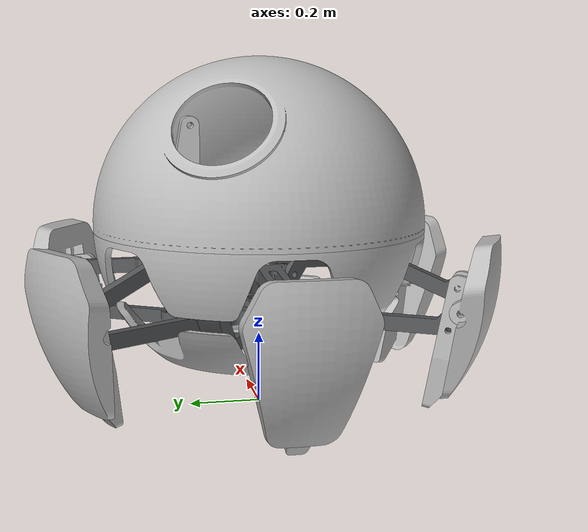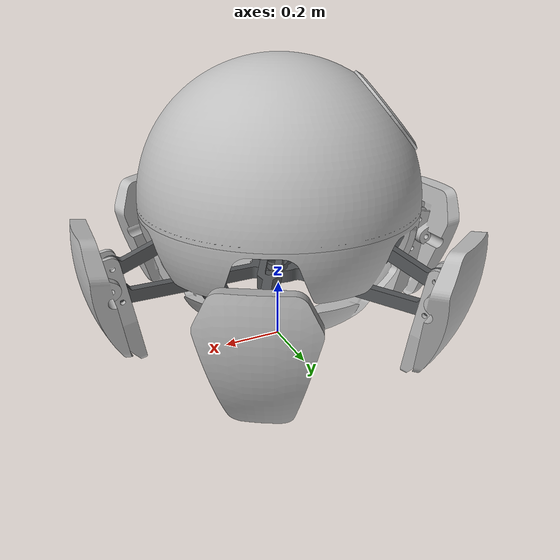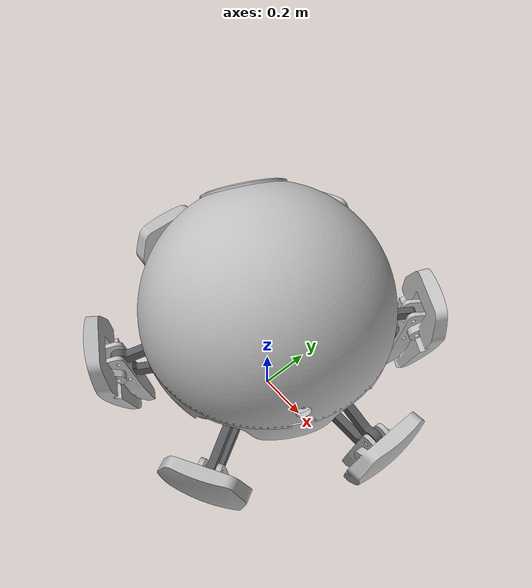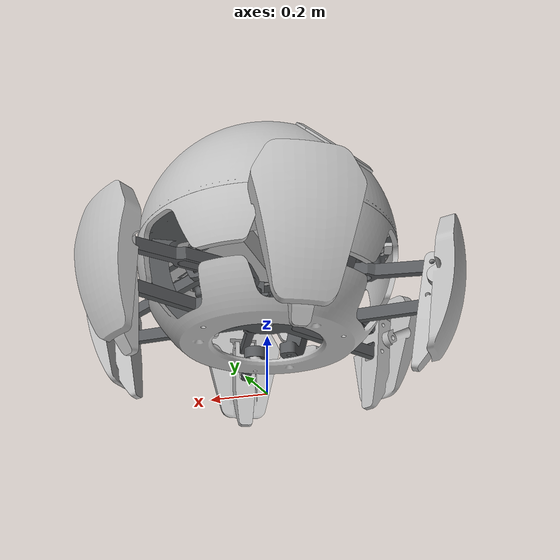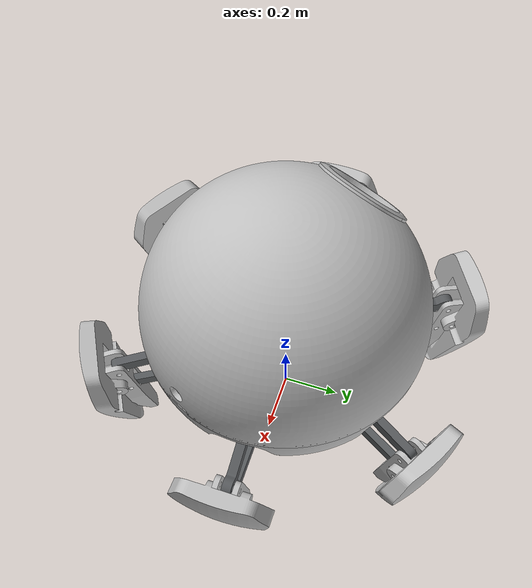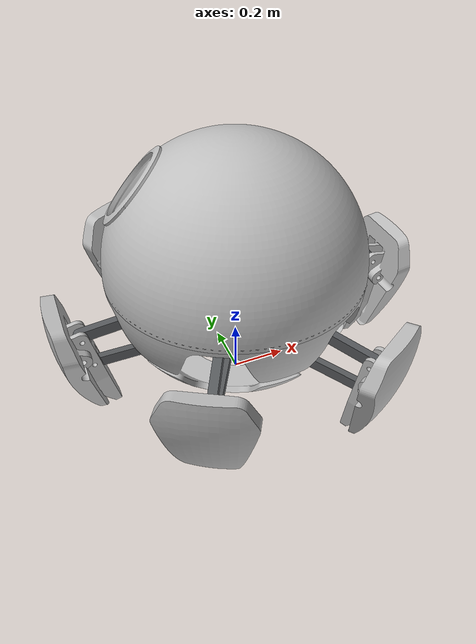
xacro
<?xml version="1.0" ?>
<robot name="xpider" xmlns:xacro="http://ros.org/wiki/xacro">
<xacro:include filename="$(find xpider_resources)/urdf/common_materials.xacro"/>
<xacro:include filename="$(find xpider_resources)/urdf/common_constants.xacro"/>
<xacro:include filename="$(find xpider_descriptions)/models/step_bridge.xacro"/>
<xacro:include filename="$(find xpider_descriptions)/models/step_up.xacro"/>
<xacro:include filename="$(find xpider_descriptions)/models/step_connect.xacro"/>
<xacro:include filename="$(find xpider_descriptions)/models/step_b.xacro"/>
<xacro:include filename="$(find xpider_descriptions)/models/step_c.xacro"/>
<xacro:include filename="$(find xpider_descriptions)/models/xpider.gazebo" />

  <link name="world"/>

  <!-- Big fixed components-->
  <xacro:include filename="$(find xpider_descriptions)/models/set_base.xacro" />

  <!--  First set of Legs -->
  <xacro:include filename="$(find xpider_descriptions)/models/set_legs_1.xacro" />

  <!-- Second set of legs -->
  <xacro:include filename="$(find xpider_descriptions)/models/set_legs_2.xacro" />

  <!-- Leg shields -->
  <xacro:include filename="$(find xpider_descriptions)/models/set_legs_shield.xacro" />

</robot>

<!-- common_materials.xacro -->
<robot xmlns:xacro="http://ros.org/wiki/xacro">
  <xacro:include filename="$(find xpider_resources)/urdf/common_colours.xacro"/>

  <xacro:macro name="material_xpider_yellow">
    <material name="">
      <color rgba="${color_xpider_yellow}"/>
    </material>
  </xacro:macro>

  <xacro:macro name="material_xpider_white">
    <material name="">
      <color rgba="${color_xpider_white}"/>
    </material>
  </xacro:macro>

  <xacro:macro name="material_xpider_black">
    <material name="">
      <color rgba="${color_xpider_black}"/>
    </material>
  </xacro:macro>

  <xacro:macro name="material_xpider_grey">
    <material name="">
      <color rgba="${color_xpider_grey}"/>
    </material>
  </xacro:macro>

  <xacro:macro name="material_xpider_greyish">
    <material name="">
      <color rgba="${color_xpider_greyish}"/>
    </material>
  </xacro:macro>

</robot>

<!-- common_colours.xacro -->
<robot xmlns:xacro="http://ros.org/wiki/xacro">

  <!-- RAL 1021 -->
  <xacro:property name="color_xpider_yellow"   value="0.96 0.76 0.13 1.0" />
  <!-- RAL 9002 -->
  <xacro:property name="color_xpider_white"    value="0.86 0.85 0.81 1.0" />
  <!-- RAL 7024 -->
  <xacro:property name="color_xpider_grey"     value="0.34 0.35 0.36 1.0" />

  <!-- approximations -->
  <xacro:property name="color_xpider_black"    value="0.15 0.15 0.15 1.0" />
  <xacro:property name="color_xpider_greyish"  value="0.75 0.75 0.75 1.0" />

</robot>

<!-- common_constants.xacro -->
<robot xmlns:xacro="http://ros.org/wiki/xacro">

  <!-- Pi, the ratio of a circle's circumference to its diameter -->
  <xacro:property name="m_pi" value="3.1415926535" />
  <!-- Pi divided by two -->
  <xacro:property name="m_pi_2" value="1.570796327" />
  <!-- 3Pi divided by two -->
  <xacro:property name="m_3_pi_2" value="2.35619449" />
  <!-- 3Pi divided by two -->
  <xacro:property name="m_2_pi_3" value="2.09439510239" />
  <!-- Pi divided by four -->
  <xacro:property name="m_pi_4" value="0.785398163" />
  <!-- Pi divided by three -->
  <xacro:property name="m_pi_3" value="1.0471975512" />
  <!-- Pi divided by six -->
  <xacro:property name="m_pi_6" value="0.52359877559" />
  <xacro:property name="m_5_pi_3" value="${m_2_pi_3}" />

  <!-- pi -->
  <xacro:property name="cos_m_pi" value="-1" />
  <xacro:property name="sin_m_pi" value="0" />

  <!-- pi/2 -->
  <xacro:property name="cos_m_pi_2" value="0" />
  <xacro:property name="sin_m_pi_2" value="1" />

  <!-- pi/6 -->
  <xacro:property name="cos_m_pi_6" value="0.86602540378" />
  <xacro:property name="sin_m_pi_6" value="0.5" />
  <xacro:property name="cos_m_5_pi_6" value="${-cos_m_pi_6}" />
  <xacro:property name="sin_m_5_pi_6" value="${sin_m_pi_6}" />
  <xacro:property name="cos_m_11_pi_6" value="0.86602540378" />
  <xacro:property name="sin_m_11_pi_6" value="-0.5" />

  <!-- pi/3 -->
  <xacro:property name="cos_m_pi_3" value="0.5" />
  <xacro:property name="sin_m_pi_3" value="0.86602540378" />
  <xacro:property name="cos_m_2_pi_3" value="${-cos_m_pi_3}" />
  <xacro:property name="sin_m_2_pi_3" value="${sin_m_pi_3}" />
  <xacro:property name="cos_m_4_pi_3" value="${-cos_m_pi_3}" />
  <xacro:property name="sin_m_4_pi_3" value="${-sin_m_pi_3}" />
  <xacro:property name="cos_m_5_pi_3" value="${cos_m_pi_3}" />
  <xacro:property name="sin_m_5_pi_3" value="${-sin_m_pi_3}" />

  <xacro:property name="ratio_stl" value="0.01006046568"/>

  <xacro:property name="height_base" value="${52*ratio_stl}"/>
  <xacro:property name="height_step" value="${3.97595909298*ratio_stl}"/>
  <xacro:property name="height_leg" value="${height_step/2 + 0*0.69579284127*ratio_stl}"/>
  <xacro:property name="base_link_to_step_height" value="${height_base-27.8317136509*ratio_stl}"/>
  <xacro:property name="base_link_to_step_up" value="${height_base - 4.96994886622*ratio_stl}"/>
  <xacro:property name="diameter_step" value="${47*ratio_stl}" />
  <xacro:property name="diameter_step_to_leg_123" value="${54*ratio_stl}" />
  <xacro:property name="diameter_step_up_to_leg" value="${31.5*ratio_stl}" />
  <xacro:property name="diameter_step_up" value="${26*ratio_stl}" />
  <xacro:property name="diameter_step_connect" value="${5.5*ratio_stl}" />
  <xacro:property name="height_step_connect_to_step_b" value="${3.99583888844*ratio_stl}" />
  <xacro:property name="diameter_step_connect_to_step_b" value="${4.17475704763*ratio_stl}" />
  <xacro:property name="height_base_link_to_step_c" value="${base_link_to_step_height-1.6*ratio_stl}"/>
  <xacro:property name="step_to_step_connect_height" value="${6.20249618505*ratio_stl}"/>
  <xacro:property name="diameter_step_c" value="${26*ratio_stl}" />
  <xacro:property name="x_leg_to_leg_shield_set_1" value="${2.48497443311*ratio_stl}" />
  <xacro:property name="x_leg_to_leg_shield_set_2" value="${1.49098465987*ratio_stl}" />
  <xacro:property name="z_leg_to_leg_shield" value="${5.96393863947*ratio_stl}" />

</robot>

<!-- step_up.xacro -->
<robot name="xpider_step_up" xmlns:xacro="http://ros.org/wiki/xacro">
<xacro:include filename="$(find xpider_resources)/urdf/common_materials.xacro"/>
<xacro:include filename="$(find xpider_resources)/urdf/common_constants.xacro"/>

    <xacro:macro name="step_up" params="num">
    <link name="step_up_${num}">
    <visual>
      <origin xyz="0 0 0" rpy="0 0 0"/>
      <geometry>
        <mesh filename="package://xpider_descriptions/meshes/step_up.stl" scale="${ratio_stl} ${ratio_stl} ${ratio_stl}"/>
      </geometry>
      <xacro:material_xpider_grey />
      </visual>
      <collision>
        <origin xyz="0 0 0" rpy="0 0 0"/>
        <geometry>
          <mesh filename="package://xpider_descriptions/meshes/step_up.stl" scale="${ratio_stl} ${ratio_stl} ${ratio_stl}"/>
        </geometry>
      </collision>
    </link>
    </xacro:macro>

</robot>

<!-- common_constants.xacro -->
<robot xmlns:xacro="http://ros.org/wiki/xacro">

  <!-- Pi, the ratio of a circle's circumference to its diameter -->
  <xacro:property name="m_pi" value="3.1415926535" />
  <!-- Pi divided by two -->
  <xacro:property name="m_pi_2" value="1.570796327" />
  <!-- 3Pi divided by two -->
  <xacro:property name="m_3_pi_2" value="2.35619449" />
  <!-- 3Pi divided by two -->
  <xacro:property name="m_2_pi_3" value="2.09439510239" />
  <!-- Pi divided by four -->
  <xacro:property name="m_pi_4" value="0.785398163" />
  <!-- Pi divided by three -->
  <xacro:property name="m_pi_3" value="1.0471975512" />
  <!-- Pi divided by six -->
  <xacro:property name="m_pi_6" value="0.52359877559" />
  <xacro:property name="m_5_pi_3" value="${m_2_pi_3}" />

  <!-- pi -->
  <xacro:property name="cos_m_pi" value="-1" />
  <xacro:property name="sin_m_pi" value="0" />

  <!-- pi/2 -->
  <xacro:property name="cos_m_pi_2" value="0" />
  <xacro:property name="sin_m_pi_2" value="1" />

  <!-- pi/6 -->
  <xacro:property name="cos_m_pi_6" value="0.86602540378" />
  <xacro:property name="sin_m_pi_6" value="0.5" />
  <xacro:property name="cos_m_5_pi_6" value="${-cos_m_pi_6}" />
  <xacro:property name="sin_m_5_pi_6" value="${sin_m_pi_6}" />
  <xacro:property name="cos_m_11_pi_6" value="0.86602540378" />
  <xacro:property name="sin_m_11_pi_6" value="-0.5" />

  <!-- pi/3 -->
  <xacro:property name="cos_m_pi_3" value="0.5" />
  <xacro:property name="sin_m_pi_3" value="0.86602540378" />
  <xacro:property name="cos_m_2_pi_3" value="${-cos_m_pi_3}" />
  <xacro:property name="sin_m_2_pi_3" value="${sin_m_pi_3}" />
  <xacro:property name="cos_m_4_pi_3" value="${-cos_m_pi_3}" />
  <xacro:property name="sin_m_4_pi_3" value="${-sin_m_pi_3}" />
  <xacro:property name="cos_m_5_pi_3" value="${cos_m_pi_3}" />
  <xacro:property name="sin_m_5_pi_3" value="${-sin_m_pi_3}" />

  <xacro:property name="ratio_stl" value="0.01006046568"/>

  <xacro:property name="height_base" value="${52*ratio_stl}"/>
  <xacro:property name="height_step" value="${3.97595909298*ratio_stl}"/>
  <xacro:property name="height_leg" value="${height_step/2 + 0*0.69579284127*ratio_stl}"/>
  <xacro:property name="base_link_to_step_height" value="${height_base-27.8317136509*ratio_stl}"/>
  <xacro:property name="base_link_to_step_up" value="${height_base - 4.96994886622*ratio_stl}"/>
  <xacro:property name="diameter_step" value="${47*ratio_stl}" />
  <xacro:property name="diameter_step_to_leg_123" value="${54*ratio_stl}" />
  <xacro:property name="diameter_step_up_to_leg" value="${31.5*ratio_stl}" />
  <xacro:property name="diameter_step_up" value="${26*ratio_stl}" />
  <xacro:property name="diameter_step_connect" value="${5.5*ratio_stl}" />
  <xacro:property name="height_step_connect_to_step_b" value="${3.99583888844*ratio_stl}" />
  <xacro:property name="diameter_step_connect_to_step_b" value="${4.17475704763*ratio_stl}" />
  <xacro:property name="height_base_link_to_step_c" value="${base_link_to_step_height-1.6*ratio_stl}"/>
  <xacro:property name="step_to_step_connect_height" value="${6.20249618505*ratio_stl}"/>
  <xacro:property name="diameter_step_c" value="${26*ratio_stl}" />

</robot>

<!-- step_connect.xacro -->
<robot name="xpider_step_connect" xmlns:xacro="http://ros.org/wiki/xacro">
<xacro:include filename="$(find xpider_resources)/urdf/common_materials.xacro"/>
<xacro:include filename="$(find xpider_resources)/urdf/common_constants.xacro"/>

    <xacro:macro name="step_connect" params="num">
    <link name="step_connect_${num}">
    <visual>
      <origin xyz="0 0 0" rpy="0 0 0"/>
      <geometry>
        <mesh filename="package://xpider_descriptions/meshes/step_connect.stl" scale="${ratio_stl} ${ratio_stl} ${ratio_stl}"/>
      </geometry>
      <xacro:material_xpider_grey />
      </visual>
      <collision>
        <origin xyz="0 0 0" rpy="0 0 0"/>
        <geometry>
          <mesh filename="package://xpider_descriptions/meshes/step_connect.stl" scale="${ratio_stl} ${ratio_stl} ${ratio_stl}"/>
        </geometry>
      </collision>
    </link>
    </xacro:macro>
</robot>

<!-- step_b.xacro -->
<robot name="xpider_step_b" xmlns:xacro="http://ros.org/wiki/xacro">
<xacro:include filename="$(find xpider_resources)/urdf/common_materials.xacro"/>
<xacro:include filename="$(find xpider_resources)/urdf/common_constants.xacro"/>

    <xacro:macro name="step_b" params="num">
    <link name="step_b_${num}">
    <visual>
      <origin xyz="0 0 0" rpy="${m_pi_3/11 - m_pi_2} 0 ${m_pi}"/>
      <geometry>
        <mesh filename="package://xpider_descriptions/meshes/step_b.stl" scale="${ratio_stl} ${ratio_stl} ${ratio_stl}"/>
      </geometry>
      <xacro:material_xpider_grey />
      </visual>
      <collision>
        <origin xyz="0 0 0" rpy="${m_pi_3/11 - m_pi_2} 0 ${m_pi}"/>
        <geometry>
          <mesh filename="package://xpider_descriptions/meshes/step_b.stl" scale="${ratio_stl} ${ratio_stl} ${ratio_stl}"/>
        </geometry>
      </collision>
    </link>
    </xacro:macro>
</robot>

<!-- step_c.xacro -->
<robot name="xpider_step_c" xmlns:xacro="http://ros.org/wiki/xacro">
<xacro:include filename="$(find xpider_resources)/urdf/common_materials.xacro"/>
<xacro:include filename="$(find xpider_resources)/urdf/common_constants.xacro"/>

    <xacro:macro name="step_c" params="num">
    <link name="step_c_${num}">
    <visual>
      <origin xyz="0 0 0" rpy="-${m_pi_2} 0 ${m_pi_3 + m_pi_6}"/>
      <geometry>
        <mesh filename="package://xpider_descriptions/meshes/step_c.stl" scale="${ratio_stl} ${ratio_stl} ${ratio_stl}"/>
      </geometry>
      <xacro:material_xpider_grey />
      </visual>
      <collision>
        <origin xyz="0 0 0" rpy="-${m_pi_2} 0 ${m_pi_3 + m_pi_6}"/>
        <geometry>
          <mesh filename="package://xpider_descriptions/meshes/step_c.stl" scale="${ratio_stl} ${ratio_stl} ${ratio_stl}"/>
        </geometry>
      </collision>
    </link>
    </xacro:macro>
</robot>

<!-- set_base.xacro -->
<robot name="xpider_set_base" xmlns:xacro="http://ros.org/wiki/xacro">

  <joint name="fixed" type="fixed">
    <parent link="world"/>
    <child link="base_link"/>
  </joint>

  <xacro:include filename="$(find xpider_descriptions)/models/base_link.xacro"/>

  <joint name="base_link_to_shield_top" type="continuous">
		<parent link="base_link" />
		<child link="shield_top" />
    <axis xyz="0 0 1"/>
		<origin xyz="0 0 ${height_base}" rpy="0 0 ${m_pi_3}" /> <!-- TOCHECK-->
	</joint>

  <xacro:include filename="$(find xpider_descriptions)/models/shield_top.xacro"/>

  <joint name="base_joint2" type="fixed">
		<parent link="base_link" />
		<child link="shield_bottom" />
		<origin xyz="0 0 ${height_base}" rpy="0 0 ${m_pi_3 + m_pi_6}" />
	</joint>

  <xacro:include filename="$(find xpider_descriptions)/models/shield_bottom.xacro"/>

  <joint name="base_step" type="prismatic">
		<parent link="base_link" />
		<child link="step" />
		<origin xyz="0 0 ${base_link_to_step_height + height_step/2}" rpy="0 0 ${m_pi_2 + m_pi_6}" />
    <limit effort="1000.0" lower="0" upper="0.03" velocity="0.5"/>
    <axis xyz="0 0 1"/>
	</joint>

  <xacro:include filename="$(find xpider_descriptions)/models/step.xacro"/>

  <joint name="base_step_base" type="fixed">
		<parent link="base_link" />
		<child link="step_base" />
		<origin xyz="0 0 ${height_base}" rpy="0 0 ${m_pi_3 + m_pi_6}" />
	</joint>

  <xacro:include filename="$(find xpider_descriptions)/models/step_base.xacro"/>

</robot>

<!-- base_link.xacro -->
<robot name="xpider_base_link" xmlns:xacro="http://ros.org/wiki/xacro">
<xacro:include filename="$(find xpider_resources)/urdf/common_materials.xacro"/>
<xacro:include filename="$(find xpider_resources)/urdf/common_constants.xacro"/>

    <link name="base_link">
    <visual>
      <origin xyz="0 0 ${height_base}" rpy="0 0 0"/>
      <geometry>
        <mesh filename="package://xpider_descriptions/meshes/base_link.stl" scale="${ratio_stl} ${ratio_stl} ${ratio_stl}"/>
      </geometry>
      <xacro:material_xpider_greyish />
      </visual>
      <collision>
        <origin xyz="0 0 ${height_base}" rpy="0 0 0"/>
        <geometry>
          <mesh filename="package://xpider_descriptions/meshes/base_link.stl" scale="${ratio_stl} ${ratio_stl} ${ratio_stl}"/>
        </geometry>
      </collision>
      <inertial>
      <origin xyz="0 0 ${height_base}" rpy="0 0 0"/>
      <mass value="1"/>
      <inertia
        ixx="1.0" ixy="0.0" ixz="0.0"
        iyy="1.0" iyz="0.0"
        izz="1.0"/>
    </inertial>
    </link>
</robot>

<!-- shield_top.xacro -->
<robot name="xpider_shield_top" xmlns:xacro="http://ros.org/wiki/xacro">
<xacro:include filename="$(find xpider_resources)/urdf/common_materials.xacro"/>
<xacro:include filename="$(find xpider_resources)/urdf/common_constants.xacro"/>

    <link name="shield_top">
    <visual>
      <origin xyz="0 0 0" rpy="${m_pi_2} 0 0.07"/>
      <geometry>
        <mesh filename="package://xpider_descriptions/meshes/shield_top.stl" scale="${ratio_stl} ${ratio_stl} ${ratio_stl}"/>
      </geometry>
      <xacro:material_xpider_greyish />
      </visual>
      <collision>
        <origin xyz="0 0 0" rpy="${m_pi_2} 0 0.07"/>
        <geometry>
          <mesh filename="package://xpider_descriptions/meshes/shield_top.stl" scale="${ratio_stl} ${ratio_stl} ${ratio_stl}"/>
        </geometry>
      </collision>
    </link>
</robot>

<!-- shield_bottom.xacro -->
<robot name="xpider_shield_bottom" xmlns:xacro="http://ros.org/wiki/xacro">
<xacro:include filename="$(find xpider_resources)/urdf/common_materials.xacro"/>
<xacro:include filename="$(find xpider_resources)/urdf/common_constants.xacro"/>

    <link name="shield_bottom">
    <visual>
      <origin xyz="0 0 0" rpy="0 -${m_pi_2} 0"/>
      <geometry>
        <mesh filename="package://xpider_descriptions/meshes/shield_bottom.stl" scale="${ratio_stl} ${ratio_stl} ${ratio_stl}"/>
      </geometry>
      <xacro:material_xpider_greyish />
      </visual>
      <collision>
        <origin xyz="0 0 0" rpy="0 -${m_pi_2} 0"/>
        <geometry>
          <mesh filename="package://xpider_descriptions/meshes/shield_bottom.stl" scale="${ratio_stl} ${ratio_stl} ${ratio_stl}"/>
        </geometry>
      </collision>
    </link>
</robot>

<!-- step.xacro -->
<robot name="xpider_step" xmlns:xacro="http://ros.org/wiki/xacro">
<xacro:include filename="$(find xpider_resources)/urdf/common_materials.xacro"/>
<xacro:include filename="$(find xpider_resources)/urdf/common_constants.xacro"/>

    <link name="step">
    <visual>
      <origin xyz="0 0 -${height_step/2}" rpy="${m_pi_2} 0 ${m_pi_3}"/>
      <geometry>
        <mesh filename="package://xpider_descriptions/meshes/step.stl" scale="${ratio_stl} ${ratio_stl} ${ratio_stl}"/>
      </geometry>
      <xacro:material_xpider_grey />
      </visual>
      <collision>
        <origin xyz="0 0 -${height_step/2}" rpy="${m_pi_2} 0 ${m_pi_3}"/>
        <geometry>
          <mesh filename="package://xpider_descriptions/meshes/step.stl" scale="${ratio_stl} ${ratio_stl} ${ratio_stl}"/>
        </geometry>
      </collision>
    </link>
</robot>

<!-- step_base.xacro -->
<robot name="xpider_step_base" xmlns:xacro="http://ros.org/wiki/xacro">
<xacro:include filename="$(find xpider_resources)/urdf/common_materials.xacro"/>
<xacro:include filename="$(find xpider_resources)/urdf/common_constants.xacro"/>

    <link name="step_base">
    <visual>
      <origin xyz="0 0 0" rpy="${m_pi_2} 0 ${m_pi_3}"/>
      <geometry>
        <mesh filename="package://xpider_descriptions/meshes/step_base.stl" scale="${ratio_stl} ${ratio_stl} ${ratio_stl}"/>
      </geometry>
      <xacro:material_xpider_grey />
      </visual>
      <collision>
        <origin xyz="0 0 0" rpy="${m_pi_2} 0 ${m_pi_3}"/>
        <geometry>
          <mesh filename="package://xpider_descriptions/meshes/step_base.stl" scale="${ratio_stl} ${ratio_stl} ${ratio_stl}"/>
        </geometry>
      </collision>
    </link>
</robot>

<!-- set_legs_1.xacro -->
<robot name="xpider_set_legs_1" xmlns:xacro="http://ros.org/wiki/xacro">
<xacro:include filename="$(find xpider_descriptions)/models/leg.xacro"/>
<xacro:include filename="$(find xpider_descriptions)/models/leg2.xacro"/>

  <joint name="base_link_to_step_up_1" type="revolute">
		<parent link="base_link" />
		<child link="step_up_1" />
    <origin xyz="${diameter_step_up} 0 ${base_link_to_step_up}" rpy="${m_pi_2 + 0.38} ${0} ${m_pi_3+m_pi_6}"/>
    <limit effort="1000.0" lower="0" upper="1" velocity="0.5"/>
    <axis xyz="1 0 0"/>
    <mimic joint="base_step" multiplier="-5" offset="0" />
	</joint>

  <xacro:step_up num="1"/>

  <joint name="base_link_to_step_up_2" type="revolute">
		<parent link="base_link" />
		<child link="step_up_2" />
    <origin xyz="${diameter_step_up*cos_m_2_pi_3} ${diameter_step_up*sin_m_2_pi_3} ${base_link_to_step_up}" rpy="${m_pi_2 + 0.38} ${0} ${m_2_pi_3 + m_pi_3+m_pi_6}"/>
    <limit effort="1000.0" lower="0" upper="1" velocity="0.5"/>
    <axis xyz="1 0 0"/>
    <mimic joint="base_step" multiplier="-5" offset="0" />
	</joint>

  <xacro:step_up num="2"/>

  <joint name="base_link_to_step_up_3" type="revolute">
		<parent link="base_link" />
		<child link="step_up_3" />
    <origin xyz="${diameter_step_up*cos_m_4_pi_3} ${diameter_step_up*sin_m_4_pi_3} ${base_link_to_step_up}" rpy="${m_pi_2 + 0.38} ${0} ${2*m_2_pi_3 + m_pi_3+m_pi_6}"/>
    <limit effort="1000.0" lower="0" upper="1" velocity="0.5"/>
    <axis xyz="1 0 0"/>
    <mimic joint="base_step" multiplier="-5" offset="0" />
	</joint>

  <xacro:step_up num="3"/>

  <joint name="step_to_leg_1" type="revolute">
		<parent link="step" />
		<child link="leg_1" />
    <origin xyz="${diameter_step_to_leg_123*cos_m_4_pi_3} ${diameter_step_to_leg_123*sin_m_4_pi_3} ${0}" rpy="0 0.18 ${-m_2_pi_3}"/>
    <limit effort="1000.0" lower="0" upper="1" velocity="0.5"/>
    <axis xyz="0 1 0"/>
    <mimic joint="base_step" multiplier="2" offset="0" />
	</joint>

  <xacro:leg2 num="1"/>

  <joint name="step_to_leg_2" type="revolute">
		<parent link="step" />
		<child link="leg_2" />
    <origin xyz="${diameter_step_to_leg_123} ${diameter_step_to_leg_123*0} ${0}" rpy="0 0.18 ${0}"/>
    <limit effort="1000.0" lower="0" upper="1" velocity="0.5"/>
    <axis xyz="0 1 0"/>
    <mimic joint="base_step" multiplier="2" offset="0" />
	</joint>

  <xacro:leg2 num="2"/>

  <joint name="step_to_leg_3" type="revolute">
		<parent link="step" />
		<child link="leg_3" />
    <origin xyz="${diameter_step_to_leg_123*cos_m_2_pi_3} ${diameter_step_to_leg_123*sin_m_2_pi_3} ${0}" rpy="0 0.18 ${-2*m_2_pi_3}"/>
    <limit effort="1000.0" lower="0" upper="1" velocity="0.5"/>
    <axis xyz="0 1 0"/>
    <mimic joint="base_step" multiplier="2" offset="0" />
	</joint>

  <xacro:leg2 num="3"/>

</robot>

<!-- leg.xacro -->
<robot name="xpider_leg" xmlns:xacro="http://ros.org/wiki/xacro">
<xacro:include filename="$(find xpider_resources)/urdf/common_materials.xacro"/>
<xacro:include filename="$(find xpider_resources)/urdf/common_constants.xacro"/>
<xacro:include filename="$(find xpider_resources)/urdf/common_colours.xacro"/>

    <xacro:macro name="leg" params="num">
      <link name="leg_${num}">
      <visual>
        <origin xyz="0 0 0" rpy="0 -${m_pi-m_pi_6*0.3} 0"/>
        <geometry>
          <mesh filename="package://xpider_descriptions/meshes/leg.stl" scale="${ratio_stl} ${ratio_stl} ${ratio_stl}"/>
        </geometry>
        <xacro:material_xpider_greyish />
        </visual>
        <collision>
          <origin xyz="0 0 0" rpy="0 -${m_pi-m_pi_6*0.3} 0"/>
          <geometry>
            <mesh filename="package://xpider_descriptions/meshes/leg.stl" scale="${ratio_stl} ${ratio_stl} ${ratio_stl}"/>
          </geometry>
          <xacro:material_xpider_greyish/>
        </collision>
      </link>
   </xacro:macro>
</robot>

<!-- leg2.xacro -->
<robot name="xpider_leg2" xmlns:xacro="http://ros.org/wiki/xacro">
<xacro:include filename="$(find xpider_resources)/urdf/common_materials.xacro"/>
<xacro:include filename="$(find xpider_resources)/urdf/common_constants.xacro"/>
<xacro:include filename="$(find xpider_resources)/urdf/common_colours.xacro"/>

    <xacro:macro name="leg2" params="num">
      <link name="leg_${num}">
      <visual>
        <origin xyz="0 0 0" rpy="0 0 0"/>
        <geometry>
          <mesh filename="package://xpider_descriptions/meshes/leg2.stl" scale="${ratio_stl} ${ratio_stl} ${ratio_stl}"/>
        </geometry>
        <xacro:material_xpider_greyish />
        </visual>
        <collision>
          <origin xyz="0 0 0" rpy="0 0 0"/>
          <geometry>
            <mesh filename="package://xpider_descriptions/meshes/leg2.stl" scale="${ratio_stl} ${ratio_stl} ${ratio_stl}"/>
          </geometry>
          <xacro:material_xpider_greyish/>
        </collision>
      </link>
   </xacro:macro>
</robot>

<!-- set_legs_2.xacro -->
<robot name="xpider_set_legs_2" xmlns:xacro="http://ros.org/wiki/xacro">
<xacro:include filename="$(find xpider_descriptions)/models/leg.xacro"/>
<xacro:include filename="$(find xpider_descriptions)/models/leg2.xacro"/>

  <joint name="base_link_to_step_connect_1" type="revolute">
 		<parent link="step" />
 		<child link="step_connect_1" />
    <origin xyz="${diameter_step_connect*cos_m_5_pi_3} ${diameter_step_connect*sin_m_5_pi_3} ${step_to_step_connect_height}" rpy="0 0 ${-m_pi_3 - m_pi_2}"/>
    <axis xyz="0 0 1"/>
    <limit effort="1000.0" lower="-0.1" upper="0.1" velocity="0.5"/>
 	</joint>

   <xacro:step_connect num="1"/>

  <joint name="base_link_to_step_connect_2" type="revolute">
 		<parent link="step" />
 		<child link="step_connect_2" />
    <origin xyz="${diameter_step_connect*cos_m_pi_3} ${diameter_step_connect*sin_m_pi_3} ${step_to_step_connect_height}" rpy="0 0 ${-m_pi_6}"/>
    <axis xyz="0 0 1"/>
    <limit effort="1000.0" lower="-0.1" upper="0.1" velocity="0.5"/>
 	</joint>

   <xacro:step_connect num="2"/>

  <joint name="base_link_to_step_connect_3" type="revolute">
 		<parent link="step" />
 		<child link="step_connect_3" />
    <origin xyz="${diameter_step_connect*cos_m_pi} ${diameter_step_connect*sin_m_pi} ${step_to_step_connect_height}" rpy="0 0 ${-m_pi_6 + m_2_pi_3}"/>
    <axis xyz="0 0 1"/>
    <limit effort="1000.0" lower="-0.1" upper="0.1" velocity="0.5"/>
 	</joint>

   <xacro:step_connect num="3"/>

  <joint name="step_connect_1_to_step_b_1" type="revolute">
 		<parent link="step_connect_1" />
 		<child link="step_b_1" />
    <origin xyz="${0} ${diameter_step_connect_to_step_b} ${height_step_connect_to_step_b}" rpy="0 0 0"/>
    <axis xyz="1 0 0"/>
    <limit effort="1000.0" lower="-0.1" upper="0.08" velocity="0.5"/>
 	</joint>

   <xacro:step_b num="1"/>

  <joint name="step_connect_2_to_step_b_2" type="revolute">
 		<parent link="step_connect_2" />
 		<child link="step_b_2" />
    <origin xyz="${0} ${diameter_step_connect_to_step_b} ${height_step_connect_to_step_b}" rpy="0 0 0"/>
    <axis xyz="1 0 0"/>
    <limit effort="1000.0" lower="-0.1" upper="0.08" velocity="0.5"/>
 	</joint>

   <xacro:step_b num="2"/>

  <joint name="step_connect_3_to_step_b_3" type="revolute">
 		<parent link="step_connect_3" />
 		<child link="step_b_3" />
    <origin xyz="${0} ${diameter_step_connect_to_step_b} ${height_step_connect_to_step_b}" rpy="0 0 0"/>
    <axis xyz="1 0 0"/>
    <limit effort="1000.0" lower="-0.1" upper="0.08" velocity="0.5"/>
 	</joint>

   <xacro:step_b num="3"/>

  <joint name="base_link_to_step_c_1" type="revolute">
 		<parent link="base_link" />
 		<child link="step_c_1" />
    <origin xyz="${diameter_step_c*cos_m_pi_3} ${diameter_step_c*sin_m_pi_3} ${height_base_link_to_step_c}" rpy="0 0 ${-m_pi_6}"/>
    <limit effort="1000.0" lower="-0.1" upper="0.1" velocity="0.5"/>
    <axis xyz="0 0 1"/>
    <mimic joint="base_link_to_step_connect_1" multiplier="1" offset="0" />
 	</joint>

   <xacro:step_c num="1"/>

  <joint name="base_link_to_step_c_2" type="revolute">
 		<parent link="base_link" />
 		<child link="step_c_2" />
    <origin xyz="${diameter_step_c*cos_m_pi} ${diameter_step_c*sin_m_pi} ${height_base_link_to_step_c}" rpy="0 0 ${m_pi_2}"/>
    <limit effort="1000.0" lower="-0.1" upper="0.1" velocity="0.5"/>
    <axis xyz="0 0 1"/>
    <mimic joint="base_link_to_step_connect_2" multiplier="1" offset="0" />
 	</joint>

   <xacro:step_c num="2"/>

  <joint name="base_link_to_step_c_3" type="revolute">
 		<parent link="base_link" />
 		<child link="step_c_3" />
    <origin xyz="${diameter_step_c*cos_m_5_pi_3} ${diameter_step_c*sin_m_5_pi_3} ${height_base_link_to_step_c}" rpy="0 0 ${m_pi+m_pi_6}"/>
    <limit effort="1000.0" lower="-0.1" upper="0.1" velocity="0.5"/>
    <axis xyz="0 0 1"/>
    <mimic joint="base_link_to_step_connect_3" multiplier="1" offset="0" />
 	</joint>

   <xacro:step_c num="3"/>

  <joint name="step_b_1_to_leg_4" type="fixed">
 		<parent link="step_b_1" />
 		<child link="leg_4" />
    <origin xyz="${0} ${(diameter_step)*(-cos_m_pi)} ${-0.005}" rpy="0 0 ${m_pi_2}"/>
 	</joint>

   <xacro:leg num="4"/>

  <joint name="step_b_2_to_leg_5" type="fixed">
 		<parent link="step_b_2" />
 		<child link="leg_5" />
    <origin xyz="${0} ${(diameter_step)*(-cos_m_pi)} ${-0.005}" rpy="0 0.07 ${m_pi_2}"/>
 	</joint>

   <xacro:leg num="5"/>

  <joint name="step_b_3_to_leg_6" type="fixed">
 		<parent link="step_b_3" />
 		<child link="leg_6" />
    <origin xyz="${0} ${(diameter_step)*(-cos_m_pi)} ${-0.005}" rpy="0 0 ${m_pi_2}"/>
 	</joint>

   <xacro:leg num="6"/>
 </robot>

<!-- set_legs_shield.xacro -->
<robot name="xpider_set_legs_1" xmlns:xacro="http://ros.org/wiki/xacro">
<xacro:include filename="$(find xpider_descriptions)/models/leg_shield.xacro"/>

  <joint name="leg_1_to_leg_shield_1" type="fixed">
		<parent link="leg_1" />
		<child link="leg_shield_1" />
    <origin xyz="${x_leg_to_leg_shield_set_1} 0 ${z_leg_to_leg_shield}" rpy="${-m_pi/2} 0 0"/>
	</joint>

  <xacro:leg_shield num="1"/>

  <joint name="leg_2_to_leg_shield_2" type="fixed">
		<parent link="leg_2" />
		<child link="leg_shield_2" />
    <origin xyz="${x_leg_to_leg_shield_set_1} 0 ${z_leg_to_leg_shield}" rpy="${-m_pi/2} 0 0"/>
	</joint>

  <xacro:leg_shield num="2"/>

  <joint name="leg_3_to_leg_shield_3" type="fixed">
		<parent link="leg_3" />
		<child link="leg_shield_3" />
    <origin xyz="${x_leg_to_leg_shield_set_1} 0 ${z_leg_to_leg_shield}" rpy="${-m_pi/2} 0 0"/>
	</joint>

  <xacro:leg_shield num="3"/>

  <joint name="leg_4_to_leg_shield_4" type="fixed">
		<parent link="leg_4" />
		<child link="leg_shield_4" />
    <origin xyz="${x_leg_to_leg_shield_set_2} 0 ${-z_leg_to_leg_shield}" rpy="${-m_pi/2} ${0.15} 0"/>
	</joint>

  <xacro:leg_shield num="4"/>

  <joint name="leg_5_to_leg_shield_5" type="fixed">
		<parent link="leg_5" />
		<child link="leg_shield_5" />
    <origin xyz="${x_leg_to_leg_shield_set_2} 0 ${-z_leg_to_leg_shield}" rpy="${-m_pi/2} ${0.15} 0"/>
	</joint>

  <xacro:leg_shield num="5"/>

  <joint name="leg_6_to_leg_shield_6" type="fixed">
		<parent link="leg_6" />
		<child link="leg_shield_6" />
    <origin xyz="${x_leg_to_leg_shield_set_2} 0 ${-z_leg_to_leg_shield}" rpy="${-m_pi/2} ${0.15} 0"/>
	</joint>

  <xacro:leg_shield num="6"/>

</robot>

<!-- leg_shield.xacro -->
<robot name="xpider_leg_shield" xmlns:xacro="http://ros.org/wiki/xacro">
<xacro:include filename="$(find xpider_resources)/urdf/common_materials.xacro"/>
<xacro:include filename="$(find xpider_resources)/urdf/common_constants.xacro"/>

    <xacro:macro name="leg_shield" params="num">
      <link name="leg_shield_${num}">
      <visual>
        <origin xyz="0 0 0" rpy="0 0 0"/>
        <geometry>
          <mesh filename="package://xpider_descriptions/meshes/leg_shield.stl" scale="${ratio_stl} ${ratio_stl} ${ratio_stl}"/>
        </geometry>
        <xacro:material_xpider_greyish />
        </visual>
        <collision>
          <origin xyz="0 0 0" rpy="0 0 0"/>
          <geometry>
            <mesh filename="package://xpider_descriptions/meshes/leg_shield.stl" scale="${ratio_stl} ${ratio_stl} ${ratio_stl}"/>
          </geometry>
        </collision>
      </link>
   </xacro:macro>
</robot>
